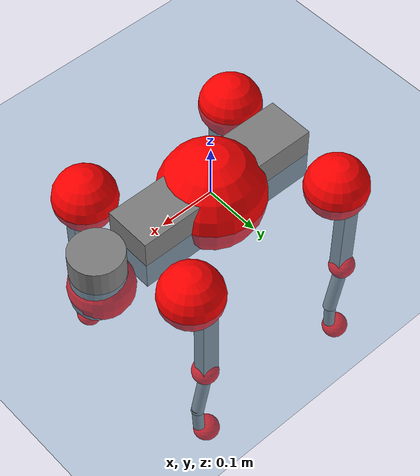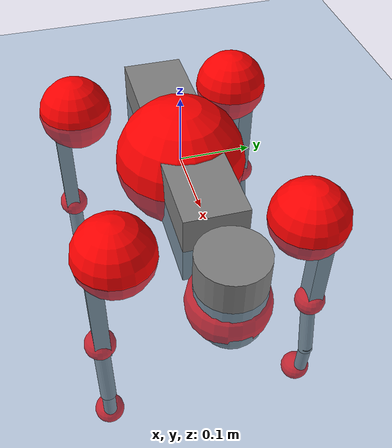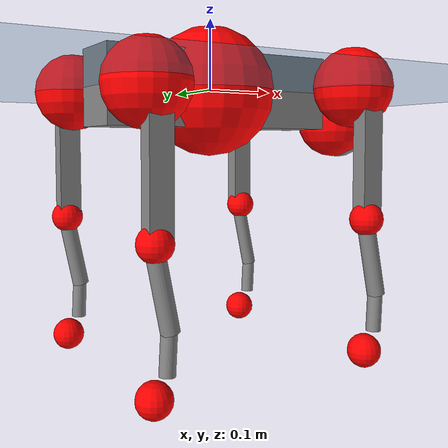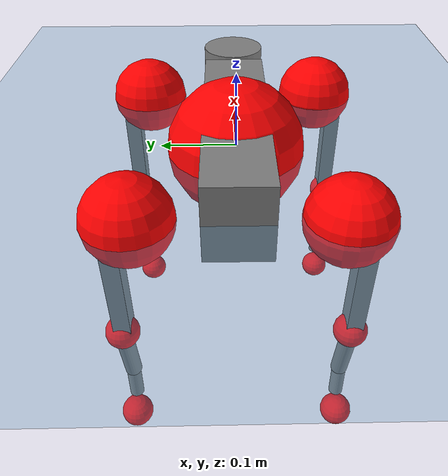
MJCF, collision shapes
<mujoco model="go2">
  <compiler angle="radian" assetdir="assets" balanceinertia="true" inertiafromgeom="false"/>

  <option timestep="0.005" density="1.2" viscosity="2e-05"/>

  <size nkey="1"/>

  <visual>
    <quality shadowsize="8192"/>
    <map shadowclip="0.5"/>
  </visual>

  <default>
    <default class="/">
      <geom contype="0" conaffinity="0" group="1" solref="-1000 -80"/>
      <site size="0.01 0.005 0.005" group="5"/>
      <general forcelimited="true" biastype="affine" gainprm="20" biasprm="0 -20 -0.5"/>
      <default class="go2">
        <joint armature="0.01" damping="0.01" frictionloss="0.2"/>
        <geom condim="1" margin="0.001"/>
        <default class="visual">
          <geom type="mesh" group="2"/>
        </default>
        <default class="collision">
          <geom group="3"/>
          <default class="foot">
            <geom size="0.022 0 0" condim="6" priority="1" friction="0.8 0.02 0.01" solimp="0.015 1 0.022"/>
          </default>
        </default>
        <default class="reward_collision_sphere">
          <geom group="5" rgba="1 0 0 1"/>
        </default>
      </default>
    </default>
  </default>

  <asset>
    <texture type="skybox" colorspace="auto" name="//unnamed_texture_0" builtin="gradient" rgb1="0.95 0.95 0.95" rgb2="0.95 0.95 0.95" width="100" height="600"/>
    <texture type="2d" colorspace="auto" name="texplane" builtin="checker" rgb1="0.345 0.575 0.748" rgb2="0.345 0.575 0.748" markrgb="1 1 1" width="512" height="512"/>
    <material name="MatPlane" class="/" texture="texplane" texuniform="true" texrepeat="2 2" specular="0.9"/>
    <material name="metal" class="/" rgba="0.9 0.95 0.95 1"/>
    <material name="black" class="/" rgba="0 0 0 1"/>
    <material name="white" class="/"/>
    <material name="gray" class="/" rgba="0.671705 0.692426 0.77427 1"/>
    <mesh name="base_0" class="/" file="base_0.obj"/>
    <mesh name="base_1" class="/" file="base_1.obj"/>
    <mesh name="base_2" class="/" file="base_2.obj"/>
    <mesh name="base_3" class="/" file="base_3.obj"/>
    <mesh name="base_4" class="/" file="base_4.obj"/>
    <mesh name="hip_0" class="/" file="hip_0.obj"/>
    <mesh name="hip_1" class="/" file="hip_1.obj"/>
    <mesh name="thigh_0" class="/" file="thigh_0.obj"/>
    <mesh name="thigh_1" class="/" file="thigh_1.obj"/>
    <mesh name="thigh_mirror_0" class="/" file="thigh_mirror_0.obj"/>
    <mesh name="thigh_mirror_1" class="/" file="thigh_mirror_1.obj"/>
    <mesh name="calf_0" class="/" file="calf_0.obj"/>
    <mesh name="calf_1" class="/" file="calf_1.obj"/>
    <mesh name="calf_mirror_0" class="/" file="calf_mirror_0.obj"/>
    <mesh name="calf_mirror_1" class="/" file="calf_mirror_1.obj"/>
    <mesh name="foot" class="/" file="foot.obj"/>
  </asset>

  <worldbody>
    <geom name="floor" class="/" size="100 100 0.125" type="plane" group="0" material="MatPlane"/>
    <light name="toplight_shadow" class="/" pos="0 0 5" dir="0.0990148 0.0990148 -0.990148" type="directional" ambient="0.04 0.04 0.04" diffuse="0.55 0.55 0.55" specular="0.12 0.12 0.12"/>
    <light name="toplight_fill" class="/" pos="0 0 5" dir="0.0990148 0.0990148 -0.990148" type="directional" castshadow="false" ambient="0.04 0.04 0.04" diffuse="0.3 0.3 0.3" specular="0.08 0.08 0.08"/>
    <body name="trunk" childclass="go2" pos="-0.000972719 0.000519013 -0.00159988" quat="0.999999 0.000162886 0.000232 -0.00098927">
      <inertial pos="0.0157186 0.00239815 -0.00465112" quat="-0.00533255 0.708368 0.00512569 0.705805" mass="5.16426" diaginertia="0.0391994 0.148429 0.0105559"/>
      <joint name="//unnamed_joint_0" type="free" armature="0" damping="0" frictionloss="0"/>
      <geom name="//unnamed_geom_1" class="visual" material="black" mesh="base_0"/>
      <geom name="//unnamed_geom_2" class="visual" material="black" mesh="base_1"/>
      <geom name="//unnamed_geom_3" class="visual" material="black" mesh="base_2"/>
      <geom name="//unnamed_geom_4" class="visual" material="white" mesh="base_3"/>
      <geom name="//unnamed_geom_5" class="visual" material="gray" mesh="base_4"/>
      <geom name="trunk_1" class="collision" size="0.171768 0.0426908 0.0520508" type="box"/>
      <geom name="trunk_2" class="collision" size="0.0456586 0.0410927" pos="0.231812 0 0.0084386" type="cylinder"/>
      <geom name="trunk_3" class="collision" size="0.0429191" pos="0.238319 0 -0.0506316"/>
      <geom name="//unnamed_geom_9" class="reward_collision_sphere" size="0.0913172"/>
      <geom name="//unnamed_geom_10" class="reward_collision_sphere" size="0.0547903" pos="0.227745 0 -0.0379737"/>
      <site name="imu" pos="-0.0227276 0.0134504 0.0219548" size="0.00913172"/>
      <camera name="track" pos="0 -2.16456 0" quat="0.707107 0.707107 0 0" mode="trackcom"/>
      <camera name="ego_camera" pos="0.253773 0 0.0379737" quat="-0.5 -0.5 0.5 0.5"/>
      <body name="FL_hip" pos="0.156561 0.0534977 0.00145798" quat="1 0.000272138 -0.000256602 -0.000283322">
        <inertial pos="-0.00670038 0.00224443 -0.0010877" quat="0.496378 0.501169 0.510626 0.491628" mass="0.50114" diaginertia="0.000315001 0.000847923 0.00019807"/>
        <joint name="FL_hip_joint" pos="0 0 0" axis="0.999995 -0.00145361 -0.0029574" range="-1.05658 1.10045" armature="0.00917625" damping="0" frictionloss="0.205676"/>
        <geom name="//unnamed_geom_11" class="visual" material="metal" mesh="hip_0"/>
        <geom name="//unnamed_geom_12" class="visual" material="gray" mesh="hip_1"/>
        <geom name="//unnamed_geom_13" class="collision" size="0.0420059 0.0182634" pos="0 0.0865825 0" quat="0.707107 0.707107 0 0" type="cylinder"/>
        <geom name="//unnamed_geom_14" class="reward_collision_sphere" size="0.0547903" pos="0 0.0757597 0"/>
        <body name="FL_thigh" pos="-0.00332252 0.105581 0.00111054" quat="1 -0.000362286 -0.000114898 0.000210974">
          <inertial pos="-0.00202302 -0.0239011 -0.0268612" quat="0.827213 0.0826788 -0.018572 0.555461" mass="0.851132" diaginertia="0.00204731 0.00840654 0.000352268"/>
          <joint name="FL_thigh_joint" pos="0 0 0" axis="0.00471487 0.999972 0.00583672" stiffness="0.00610832" range="-1.61979 3.49062" armature="0.00798049" damping="0.019393" frictionloss="0.181822"/>
          <geom name="//unnamed_geom_15" class="visual" material="metal" mesh="thigh_0"/>
          <geom name="//unnamed_geom_16" class="visual" material="gray" mesh="thigh_1"/>
          <geom name="//unnamed_geom_17" class="collision" size="0.0972528 0.0111864 0.0155239" pos="0 0 -0.0898711" quat="0.707107 0 0.707107 0" type="box"/>
          <body name="FL_calf" pos="0.00113514 -0.00178442 -0.180739" quat="1 -2.3165e-06 -6.19899e-06 7.28046e-06">
            <inertial pos="0.00415871 -0.00260838 -0.119259" quat="0.710652 0.00459871 -0.00332077 0.703521" mass="0.185907" diaginertia="0.000518791 0.00215548 2.2703e-05"/>
            <joint name="FL_calf_joint" pos="0 0 0" axis="-0.00549967 0.999837 -0.0172145" range="-2.74419 -0.78151" armature="0.0089669" damping="0" frictionloss="0.195501"/>
            <geom name="//unnamed_geom_18" class="visual" material="gray" mesh="calf_0"/>
            <geom name="//unnamed_geom_19" class="visual" material="black" mesh="calf_1"/>
            <geom name="FL_calf0" class="collision" size="0.0109581 0.0547903" pos="0.00650699 0 -0.0506316" quat="0.994493 0 -0.104807 0" type="cylinder"/>
            <geom name="//unnamed_geom_21" class="collision" size="0.0100449 0.0296781" pos="0.0162675 0 -0.124891" quat="0.999688 0 0.0249974 0" type="cylinder"/>
            <geom name="//unnamed_geom_22" class="visual" pos="0 0 -0.179742" quat="1 0 0 0" material="black" mesh="foot"/>
            <geom name="FL_foot" class="foot" size="0.0152192" pos="-0.00162675 0 -0.179742"/>
            <geom name="//unnamed_geom_24" class="reward_collision_sphere" size="0.0228293"/>
            <geom name="//unnamed_geom_25" class="reward_collision_sphere" size="0.0228293" pos="-0.00162675 0 -0.179742"/>
            <site name="FL_foot" class="foot" pos="-0.00162675 0 -0.179742" size="0.00913172"/>
          </body>
        </body>
      </body>
      <body name="FR_hip" pos="0.156409 -0.0489906 0.00306744" quat="1 -7.22016e-05 -0.00062042 0.000392002">
        <inertial pos="-0.00549468 -0.00215998 -0.000341609" quat="0.503955 0.501195 0.497202 0.497617" mass="0.519579" diaginertia="0.000308838 0.000873896 0.000200684"/>
        <joint name="FR_hip_joint" pos="0 0 0" axis="0.999915 -0.000935132 -0.0130353" range="-1.08426 0.998055" armature="0.00928085" damping="0" frictionloss="0.208393"/>
        <geom name="//unnamed_geom_26" class="visual" pos="0 2.07703e-09 8.90883e-08" quat="4.63268e-05 1 0 0" material="metal" mesh="hip_0"/>
        <geom name="//unnamed_geom_27" class="visual" pos="0 3.36712e-09 -2.20349e-07" quat="4.63268e-05 1 0 0" material="gray" mesh="hip_1"/>
        <geom name="//unnamed_geom_28" class="collision" size="0.0420059 0.0182634" pos="0 -0.0865825 0" quat="0.707107 0.707107 0 0" type="cylinder"/>
        <geom name="//unnamed_geom_29" class="reward_collision_sphere" size="0.0547903" pos="0 -0.0757597 0"/>
        <body name="FR_thigh" pos="-0.000597563 -0.106186 -0.0012402" quat="0.999999 -0.000757686 -0.00072273 0.000329729">
          <inertial pos="-0.0044447 0.0240843 -0.0290433" quat="0.549439 -0.0219779 0.0854948 0.830858" mass="0.911311" diaginertia="0.0021142 0.00841719 0.000387214"/>
          <joint name="FR_thigh_joint" pos="0 0 0" axis="-0.00261712 -0.999997 0.000105485" stiffness="0.0117058" range="-3.49346 1.51586" armature="0.00810906" damping="0.0106905" frictionloss="0.157794"/>
          <geom name="//unnamed_geom_30" class="visual" material="metal" mesh="thigh_mirror_0"/>
          <geom name="//unnamed_geom_31" class="visual" material="gray" mesh="thigh_mirror_1"/>
          <geom name="//unnamed_geom_32" class="collision" size="0.0972528 0.0111864 0.0155239" pos="0 0 -0.0898711" quat="0.707107 0 0.707107 0" type="box"/>
          <body name="FR_calf" pos="-0.00257677 -0.00181488 -0.178091" quat="1 2.35042e-05 -8.52713e-05 1.33173e-06">
            <inertial pos="0.00498826 -0.00142717 -0.117012" quat="0.700452 -0.00888749 0.000854524 0.713644" mass="0.180457" diaginertia="0.000521883 0.0021788 2.1357e-05"/>
            <joint name="FR_calf_joint" pos="0 0 0" axis="-0.000670294 -1 0.000307857" range="0.837853 2.73933" armature="0.00876563" damping="0" frictionloss="0.161197"/>
            <geom name="//unnamed_geom_33" class="visual" material="gray" mesh="calf_mirror_0"/>
            <geom name="//unnamed_geom_34" class="visual" material="black" mesh="calf_mirror_1"/>
            <geom name="FR_calf0" class="collision" size="0.0118712 0.0547903" pos="0.00813374 0 -0.0506316" quat="0.995004 0 -0.0998334 0" type="cylinder"/>
            <geom name="//unnamed_geom_36" class="collision" size="0.0100449 0.0296781" pos="0.0162675 0 -0.124891" quat="0.999688 0 0.0249974 0" type="cylinder"/>
            <geom name="//unnamed_geom_37" class="visual" pos="0 0 -0.179742" quat="1 0 0 0" material="black" mesh="foot"/>
            <geom name="FR_foot" class="foot" size="0.0204618" pos="-0.00162675 0 -0.179742"/>
            <geom name="//unnamed_geom_39" class="reward_collision_sphere" size="0.0228293"/>
            <geom name="//unnamed_geom_40" class="reward_collision_sphere" size="0.0228293" pos="-0.00162675 0 -0.179742"/>
            <site name="FR_foot" class="foot" pos="-0.00162675 0 -0.179742" size="0.00913172"/>
          </body>
        </body>
      </body>
      <body name="RL_hip" pos="-0.157691 0.0478368 0.000384826" quat="0.999999 -0.00016744 -0.00104321 0.000356765">
        <inertial pos="0.00346328 1.00055e-05 -0.00151342" quat="0.503191 0.492301 0.500789 0.503636" mass="0.505526" diaginertia="0.000295396 0.00087445 0.000191629"/>
        <joint name="RL_hip_joint" pos="0 0 0" axis="-0.999994 -0.00280386 0.00202337" range="-1.09712 1.08869" armature="0.0102673" damping="0.0175744" frictionloss="0.181079"/>
        <geom name="//unnamed_geom_41" class="visual" pos="2.65577e-10 0 5.20593e-08" quat="4.63268e-05 0 1 0" material="metal" mesh="hip_0"/>
        <geom name="//unnamed_geom_42" class="visual" pos="4.30533e-10 0 4.61692e-08" quat="4.63268e-05 0 1 0" material="gray" mesh="hip_1"/>
        <geom name="//unnamed_geom_43" class="collision" size="0.0420059 0.0182634" pos="0 0.0865825 0" quat="0.707107 0.707107 0 0" type="cylinder"/>
        <geom name="//unnamed_geom_44" class="reward_collision_sphere" size="0.0547903" pos="0 0.0757597 0"/>
        <body name="RL_thigh" pos="-0.00151965 0.101214 -0.00124583" quat="0.999999 -0.000321027 -0.000912615 0.00107076">
          <inertial pos="-0.00179748 -0.0267409 -0.0290245" quat="0.82959 0.0846587 -0.0202999 0.551545" mass="0.895113" diaginertia="0.00219767 0.00868255 0.000393936"/>
          <joint name="RL_thigh_joint" pos="0 0 0" axis="-0.00436204 0.999957 0.00814842" stiffness="0.0143507" range="-0.578904 4.52857" armature="0.0090096" damping="0.0103942" frictionloss="0.202402"/>
          <geom name="//unnamed_geom_45" class="visual" material="metal" mesh="thigh_0"/>
          <geom name="//unnamed_geom_46" class="visual" material="gray" mesh="thigh_1"/>
          <geom name="//unnamed_geom_47" class="collision" size="0.0972528 0.0111864 0.0155239" pos="0 0 -0.0898711" quat="0.707107 0 0.707107 0" type="box"/>
          <body name="RL_calf" pos="-0.00146817 0.00248261 -0.182574" quat="0.999999 -0.000153565 -0.00129731 -4.7393e-05">
            <inertial pos="0.00336597 0.00228958 -0.120485" quat="0.708605 -0.00925132 -0.00436362 0.705532" mass="0.1757" diaginertia="0.000510557 0.00203201 2.2475e-05"/>
            <joint name="RL_calf_joint" pos="0 0 0" axis="0.00914018 0.999944 0.00525629" stiffness="0.000241911" range="-2.73654 -0.85596" armature="0.0101501" damping="0.0010507" frictionloss="0.182288"/>
            <geom name="//unnamed_geom_48" class="visual" material="gray" mesh="calf_0"/>
            <geom name="//unnamed_geom_49" class="visual" material="black" mesh="calf_1"/>
            <geom name="RL_calf0" class="collision" size="0.0118712 0.0547903" pos="0.00813374 0 -0.0506316" quat="0.995004 0 -0.0998334 0" type="cylinder"/>
            <geom name="//unnamed_geom_51" class="collision" size="0.0100449 0.0296781" pos="0.0162675 0 -0.124891" quat="0.999688 0 0.0249974 0" type="cylinder"/>
            <geom name="//unnamed_geom_52" class="visual" pos="0 0 -0.179742" quat="1 0 0 0" material="black" mesh="foot"/>
            <geom name="RL_foot" class="foot" size="0.020288" pos="-0.00162675 0 -0.179742"/>
            <geom name="//unnamed_geom_54" class="reward_collision_sphere" size="0.0228293"/>
            <geom name="//unnamed_geom_55" class="reward_collision_sphere" size="0.0228293" pos="-0.00162675 0 -0.179742"/>
            <site name="RL_foot" class="foot" pos="-0.00162675 0 -0.179742" size="0.00913172"/>
          </body>
        </body>
      </body>
      <body name="RR_hip" pos="-0.155796 -0.0500766 -0.0053304" quat="1 -0.000147442 0.000344493 -7.37769e-05">
        <inertial pos="0.00155507 -0.0046695 -0.000500775" quat="0.493794 0.492052 0.505605 0.508347" mass="0.520386" diaginertia="0.000328739 0.000902665 0.000216073"/>
        <joint name="RR_hip_joint" pos="0 0 0" axis="-0.999983 -0.00235766 -0.00541981" range="-1.08964 1.04935" armature="0.00915642" damping="0.0041699" frictionloss="0.193185"/>
        <geom name="//unnamed_geom_56" class="visual" pos="-2.56268e-10 2.07703e-09 -3.7029e-08" quat="2.14617e-09 4.63268e-05 4.63268e-05 -1" material="metal" mesh="hip_0"/>
        <geom name="//unnamed_geom_57" class="visual" pos="-4.5356e-10 3.36712e-09 2.66519e-07" quat="2.14617e-09 4.63268e-05 4.63268e-05 -1" material="gray" mesh="hip_1"/>
        <geom name="//unnamed_geom_58" class="collision" size="0.0420059 0.0182634" pos="0 -0.0865825 0" quat="0.707107 0.707107 0 0" type="cylinder"/>
        <geom name="//unnamed_geom_59" class="reward_collision_sphere" size="0.0547903" pos="0 -0.0757597 0"/>
        <body name="RR_thigh" pos="0.000464688 -0.101834 -0.00222246" quat="1 0.000210898 5.80157e-06 -8.02539e-06">
          <inertial pos="-0.000915227 0.0219822 -0.0279861" quat="0.544482 -0.0117307 0.0926831 0.833553" mass="0.852574" diaginertia="0.00215782 0.00851972 0.000372024"/>
          <joint name="RR_thigh_joint" pos="0 0 0" axis="-0.0139844 -0.999816 -0.0131625" range="-4.53175 0.468062" armature="0.00923794" damping="0" frictionloss="0.178324"/>
          <geom name="//unnamed_geom_60" class="visual" material="metal" mesh="thigh_mirror_0"/>
          <geom name="//unnamed_geom_61" class="visual" material="gray" mesh="thigh_mirror_1"/>
          <geom name="//unnamed_geom_62" class="collision" size="0.0972528 0.0111864 0.0155239" pos="0 0 -0.0898711" quat="0.707107 0 0.707107 0" type="box"/>
          <body name="RR_calf" pos="-0.00255544 0.00218153 -0.18165" quat="1 -9.1415e-05 0.000489728 3.64346e-05">
            <inertial pos="0.00584095 0.000847087 -0.119777" quat="0.706727 -0.0141361 0.00344564 0.707337" mass="0.190908" diaginertia="0.000553376 0.00231829 2.29215e-05"/>
            <joint name="RR_calf_joint" pos="0 0 0" axis="0.00568774 -0.999965 -0.00619447" range="0.883956 2.72045" armature="0.00936934" damping="0.00470062" frictionloss="0.176891"/>
            <geom name="//unnamed_geom_63" class="visual" material="gray" mesh="calf_mirror_0"/>
            <geom name="//unnamed_geom_64" class="visual" material="black" mesh="calf_mirror_1"/>
            <geom name="RR_calf0" class="collision" size="0.0118712 0.0547903" pos="0.00813374 0 -0.0506316" quat="0.995004 0 -0.0998334 0" type="cylinder"/>
            <geom name="//unnamed_geom_66" class="collision" size="0.0100449 0.0296781" pos="0.0162675 0 -0.124891" quat="0.999688 0 0.0249974 0" type="cylinder"/>
            <geom name="//unnamed_geom_67" class="visual" pos="0 0 -0.179742" quat="1 0 0 0" material="black" mesh="foot"/>
            <geom name="RR_foot" class="foot" size="0.0220685" pos="-0.00162675 0 -0.179742"/>
            <geom name="//unnamed_geom_69" class="reward_collision_sphere" size="0.0228293"/>
            <geom name="//unnamed_geom_70" class="reward_collision_sphere" size="0.0228293" pos="-0.00162675 0 -0.179742"/>
            <site name="RR_foot" class="foot" pos="-0.00162675 0 -0.179742" size="0.00913172"/>
          </body>
        </body>
      </body>
    </body>
  </worldbody>

  <contact>
    <pair class="/" geom1="floor" geom2="FL_foot" name="//unnamed_contact_0"/>
    <pair class="/" geom1="floor" geom2="FR_foot" name="//unnamed_contact_1"/>
    <pair class="/" geom1="floor" geom2="RL_foot" name="//unnamed_contact_2"/>
    <pair class="/" geom1="floor" geom2="RR_foot" name="//unnamed_contact_3"/>
  </contact>

  <actuator>
    <general name="FL_hip" class="/" joint="FL_hip_joint" forcerange="-21.7415 21.7415" gainprm="18.2779" biasprm="0 -18.2779 -0.447067"/>
    <general name="FL_thigh" class="/" joint="FL_thigh_joint" forcerange="-21.3315 21.3315" gainprm="18.2779" biasprm="0 -18.2779 -0.447067"/>
    <general name="FL_calf" class="/" joint="FL_calf_joint" forcerange="-45.5797 45.5797" gainprm="18.2779" biasprm="0 -18.2779 -0.447067"/>
    <general name="FR_hip" class="/" joint="FR_hip_joint" forcerange="-22.1278 22.1278" gainprm="18.2779" biasprm="0 -18.2779 -0.447067"/>
    <general name="FR_thigh" class="/" joint="FR_thigh_joint" forcerange="-23.7031 23.7031" gainprm="18.2779" biasprm="0 -18.2779 -0.447067"/>
    <general name="FR_calf" class="/" joint="FR_calf_joint" forcerange="-40.1123 40.1123" gainprm="18.2779" biasprm="0 -18.2779 -0.447067"/>
    <general name="RL_hip" class="/" joint="RL_hip_joint" forcerange="-21.4587 21.4587" gainprm="18.2779" biasprm="0 -18.2779 -0.447067"/>
    <general name="RL_thigh" class="/" joint="RL_thigh_joint" forcerange="-20.3019 20.3019" gainprm="18.2779" biasprm="0 -18.2779 -0.447067"/>
    <general name="RL_calf" class="/" joint="RL_calf_joint" forcerange="-45.1684 45.1684" gainprm="18.2779" biasprm="0 -18.2779 -0.447067"/>
    <general name="RR_hip" class="/" joint="RR_hip_joint" forcerange="-21.6472 21.6472" gainprm="18.2779" biasprm="0 -18.2779 -0.447067"/>
    <general name="RR_thigh" class="/" joint="RR_thigh_joint" forcerange="-20.4966 20.4966" gainprm="18.2779" biasprm="0 -18.2779 -0.447067"/>
    <general name="RR_calf" class="/" joint="RR_calf_joint" forcerange="-45.8717 45.8717" gainprm="18.2779" biasprm="0 -18.2779 -0.447067"/>
  </actuator>

  <sensor>
    <gyro site="imu" name="imu_angular_velocity"/>
    <velocimeter site="imu" name="imu_linear_velocity"/>
    <framelinvel objtype="site" objname="FL_foot" name="FL_foot_global_linear_velocity"/>
    <framelinvel objtype="site" objname="FR_foot" name="FR_foot_global_linear_velocity"/>
    <framelinvel objtype="site" objname="RL_foot" name="RL_foot_global_linear_velocity"/>
    <framelinvel objtype="site" objname="RR_foot" name="RR_foot_global_linear_velocity"/>
  </sensor>

  <keyframe>
    <key name="home" qpos="0 0 0.325 1 0 0 0 0.1 0.8 -1.5 -0.1 -0.8 1.5 -0.1 0.8 -1.5 0.1 -0.8 1.5"/>
  </keyframe>
</mujoco>
